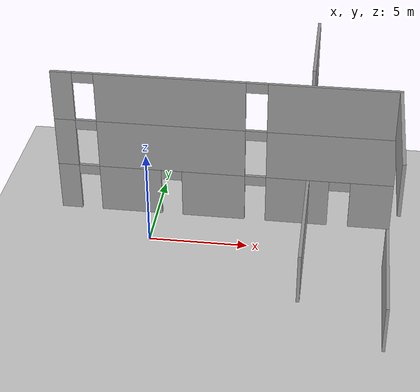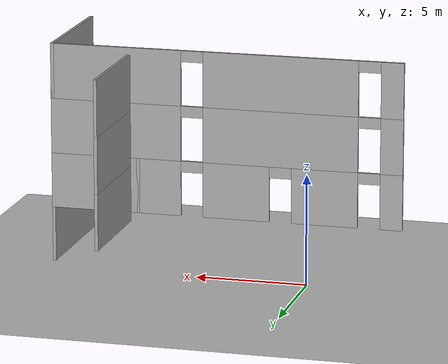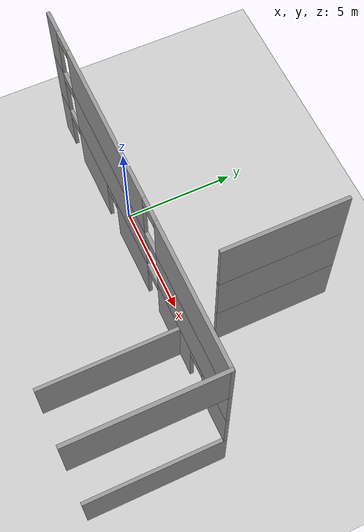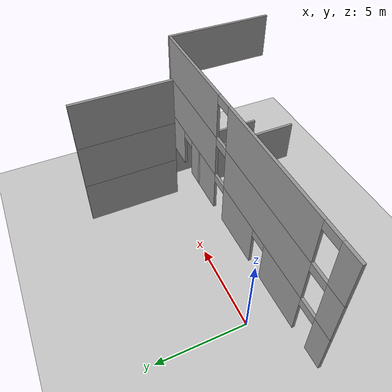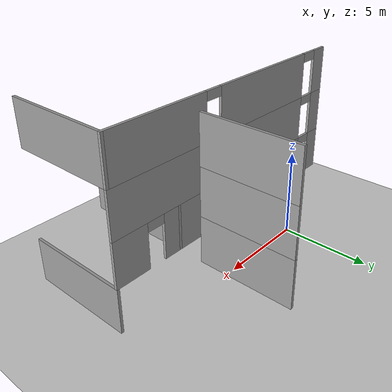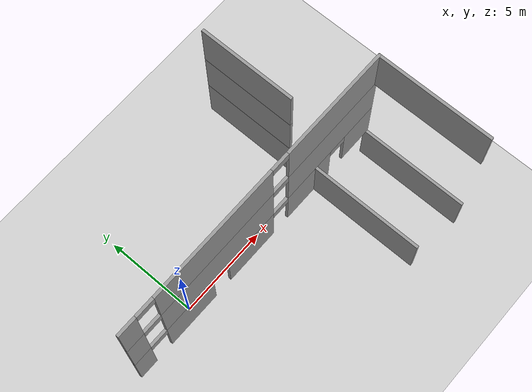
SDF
<sdf version="1.7">
 <world name="default">
  <model name="ground_plane">
   <static>1</static>
   <link name="link">
    <collision name="collision">
     <geometry><plane><normal>0 0 1</normal><size>100 100</size></plane></geometry>
     <surface>
      <contact><collide_bitmask>65535</collide_bitmask></contact>
      <friction><ode><mu>100</mu><mu2>50</mu2></ode></friction>
     </surface>
    </collision>
    <visual name="visual">
     <cast_shadows>0</cast_shadows>
     <geometry><plane><normal>0 0 1</normal><size>100 100</size></plane></geometry>
     <material>
      <script><uri>file://media/materials/scripts/gazebo.material</uri><name>Gazebo/Grey</name></script>
     </material>
    </visual>
   </link>
  </model>
  <model name="floor4plan_transp">
   <link name="Wall_112">
    <pose>7.98119 3.69551 7.5 0 0 -1.5708</pose>
    <visual name="Wall_112_Visual">
     <pose>0 0 1.25 0 -0 0</pose>
     <geometry><box><size>5 0.15 2.5</size></box></geometry>
     <material>
      <script><uri>file://media/materials/scripts/gazebo.material</uri><name>Gazebo/Grey</name></script>
      <ambient>1 1 1 1</ambient>
      <shader type="pixel"/>
     </material>
     <meta><layer>3</layer></meta>
    </visual>
    <collision name="Wall_112_Collision">
     <pose>0 0 1.25 0 -0 0</pose>
     <geometry><box><size>5 0.15 2.5</size></box></geometry>
     <surface>
      <friction>
       <ode><mu>1</mu><mu2>1</mu2><fdir1>0 0 0</fdir1><slip1>0</slip1><slip2>0</slip2></ode>
       <torsional>
        <coefficient>1</coefficient>
        <patch_radius>0</patch_radius>
        <surface_radius>0</surface_radius>
        <use_patch_radius>1</use_patch_radius>
        <ode><slip>0</slip></ode>
       </torsional>
      </friction>
      <bounce><restitution_coefficient>0</restitution_coefficient><threshold>1e+06</threshold></bounce>
      <contact>
       <collide_without_contact>0</collide_without_contact>
       <collide_without_contact_bitmask>1</collide_without_contact_bitmask>
       <collide_bitmask>1</collide_bitmask>
       <ode>
        <soft_cfm>0</soft_cfm>
        <soft_erp>0.2</soft_erp>
        <kp>1e+13</kp>
        <kd>1</kd>
        <max_vel>0.01</max_vel>
        <min_depth>0</min_depth>
       </ode>
       <bullet>
        <split_impulse>1</split_impulse>
        <split_impulse_penetration_threshold>-0.01</split_impulse_penetration_threshold>
        <soft_cfm>0</soft_cfm>
        <soft_erp>0.2</soft_erp>
        <kp>1e+13</kp>
        <kd>1</kd>
       </bullet>
      </contact>
     </surface>
    </collision>
   </link>
   <link name="Wall_116">
    <pose>3.99393 -0.263532 7.5 0 -0 0</pose>
    <visual name="Wall_116_Visual_0">
     <pose>-7.49545 0 1.25 0 -0 0</pose>
     <geometry><box><size>1.0091 0.15 2.5</size></box></geometry>
     <material>
      <script><uri>file://media/materials/scripts/gazebo.material</uri><name>Gazebo/Grey</name></script>
      <ambient>1 1 1 1</ambient>
      <shader type="pixel"/>
     </material>
     <meta><layer>3</layer></meta>
    </visual>
    <visual name="Wall_116_Visual_1">
     <pose>-2.48931 0 1.25 0 -0 0</pose>
     <geometry><box><size>7.00319 0.15 2.5</size></box></geometry>
     <material>
      <script><uri>file://media/materials/scripts/gazebo.material</uri><name>Gazebo/Grey</name></script>
      <ambient>1 1 1 1</ambient>
      <shader type="pixel"/>
     </material>
     <meta><layer>3</layer></meta>
    </visual>
    <visual name="Wall_116_Visual_2">
     <pose>5.00614 0 1.25 0 -0 0</pose>
     <geometry><box><size>5.98771 0.15 2.5</size></box></geometry>
     <material>
      <script><uri>file://media/materials/scripts/gazebo.material</uri><name>Gazebo/Grey</name></script>
      <ambient>1 1 1 1</ambient>
      <shader type="pixel"/>
     </material>
     <meta><layer>3</layer></meta>
    </visual>
    <visual name="Wall_116_Visual_3">
     <pose>-6.4909 0 2.25 0 -0 0</pose>
     <geometry><box><size>1 0.15 0.5</size></box></geometry>
     <material>
      <script><uri>file://media/materials/scripts/gazebo.material</uri><name>Gazebo/Grey</name></script>
      <ambient>1 1 1 1</ambient>
      <shader type="pixel"/>
     </material>
     <meta><layer>3</layer></meta>
    </visual>
    <visual name="Wall_116_Visual_4">
     <pose>1.51229 0 2.25 0 -0 0</pose>
     <geometry><box><size>1 0.15 0.5</size></box></geometry>
     <material>
      <script><uri>file://media/materials/scripts/gazebo.material</uri><name>Gazebo/Grey</name></script>
      <ambient>1 1 1 1</ambient>
      <shader type="pixel"/>
     </material>
     <meta><layer>3</layer></meta>
    </visual>
    <collision name="Wall_116_Collision_0">
     <pose>-7.49545 0 1.25 0 -0 0</pose>
     <geometry><box><size>1.0091 0.15 2.5</size></box></geometry>
     <surface>
      <friction>
       <ode><mu>1</mu><mu2>1</mu2><fdir1>0 0 0</fdir1><slip1>0</slip1><slip2>0</slip2></ode>
       <torsional>
        <coefficient>1</coefficient>
        <patch_radius>0</patch_radius>
        <surface_radius>0</surface_radius>
        <use_patch_radius>1</use_patch_radius>
        <ode><slip>0</slip></ode>
       </torsional>
      </friction>
      <bounce><restitution_coefficient>0</restitution_coefficient><threshold>1e+06</threshold></bounce>
      <contact>
       <collide_without_contact>0</collide_without_contact>
       <collide_without_contact_bitmask>1</collide_without_contact_bitmask>
       <collide_bitmask>1</collide_bitmask>
       <ode>
        <soft_cfm>0</soft_cfm>
        <soft_erp>0.2</soft_erp>
        <kp>1e+13</kp>
        <kd>1</kd>
        <max_vel>0.01</max_vel>
        <min_depth>0</min_depth>
       </ode>
       <bullet>
        <split_impulse>1</split_impulse>
        <split_impulse_penetration_threshold>-0.01</split_impulse_penetration_threshold>
        <soft_cfm>0</soft_cfm>
        <soft_erp>0.2</soft_erp>
        <kp>1e+13</kp>
        <kd>1</kd>
       </bullet>
      </contact>
     </surface>
    </collision>
    <collision name="Wall_116_Collision_1">
     <pose>-2.48931 0 1.25 0 -0 0</pose>
     <geometry><box><size>7.00319 0.15 2.5</size></box></geometry>
     <surface>
      <friction>
       <ode><mu>1</mu><mu2>1</mu2><fdir1>0 0 0</fdir1><slip1>0</slip1><slip2>0</slip2></ode>
       <torsional>
        <coefficient>1</coefficient>
        <patch_radius>0</patch_radius>
        <surface_radius>0</surface_radius>
        <use_patch_radius>1</use_patch_radius>
        <ode><slip>0</slip></ode>
       </torsional>
      </friction>
      <bounce><restitution_coefficient>0</restitution_coefficient><threshold>1e+06</threshold></bounce>
      <contact>
       <collide_without_contact>0</collide_without_contact>
       <collide_without_contact_bitmask>1</collide_without_contact_bitmask>
       <collide_bitmask>1</collide_bitmask>
       <ode>
        <soft_cfm>0</soft_cfm>
        <soft_erp>0.2</soft_erp>
        <kp>1e+13</kp>
        <kd>1</kd>
        <max_vel>0.01</max_vel>
        <min_depth>0</min_depth>
       </ode>
       <bullet>
        <split_impulse>1</split_impulse>
        <split_impulse_penetration_threshold>-0.01</split_impulse_penetration_threshold>
        <soft_cfm>0</soft_cfm>
        <soft_erp>0.2</soft_erp>
        <kp>1e+13</kp>
        <kd>1</kd>
       </bullet>
      </contact>
     </surface>
    </collision>
    <collision name="Wall_116_Collision_2">
     <pose>5.00614 0 1.25 0 -0 0</pose>
     <geometry><box><size>5.98771 0.15 2.5</size></box></geometry>
     <surface>
      <friction>
       <ode><mu>1</mu><mu2>1</mu2><fdir1>0 0 0</fdir1><slip1>0</slip1><slip2>0</slip2></ode>
       <torsional>
        <coefficient>1</coefficient>
        <patch_radius>0</patch_radius>
        <surface_radius>0</surface_radius>
        <use_patch_radius>1</use_patch_radius>
        <ode><slip>0</slip></ode>
       </torsional>
      </friction>
      <bounce><restitution_coefficient>0</restitution_coefficient><threshold>1e+06</threshold></bounce>
      <contact>
       <collide_without_contact>0</collide_without_contact>
       <collide_without_contact_bitmask>1</collide_without_contact_bitmask>
       <collide_bitmask>1</collide_bitmask>
       <ode>
        <soft_cfm>0</soft_cfm>
        <soft_erp>0.2</soft_erp>
        <kp>1e+13</kp>
        <kd>1</kd>
        <max_vel>0.01</max_vel>
        <min_depth>0</min_depth>
       </ode>
       <bullet>
        <split_impulse>1</split_impulse>
        <split_impulse_penetration_threshold>-0.01</split_impulse_penetration_threshold>
        <soft_cfm>0</soft_cfm>
        <soft_erp>0.2</soft_erp>
        <kp>1e+13</kp>
        <kd>1</kd>
       </bullet>
      </contact>
     </surface>
    </collision>
    <collision name="Wall_116_Collision_3">
     <pose>-6.4909 0 2.25 0 -0 0</pose>
     <geometry><box><size>1 0.15 0.5</size></box></geometry>
     <surface>
      <friction>
       <ode><mu>1</mu><mu2>1</mu2><fdir1>0 0 0</fdir1><slip1>0</slip1><slip2>0</slip2></ode>
       <torsional>
        <coefficient>1</coefficient>
        <patch_radius>0</patch_radius>
        <surface_radius>0</surface_radius>
        <use_patch_radius>1</use_patch_radius>
        <ode><slip>0</slip></ode>
       </torsional>
      </friction>
      <bounce><restitution_coefficient>0</restitution_coefficient><threshold>1e+06</threshold></bounce>
      <contact>
       <collide_without_contact>0</collide_without_contact>
       <collide_without_contact_bitmask>1</collide_without_contact_bitmask>
       <collide_bitmask>1</collide_bitmask>
       <ode>
        <soft_cfm>0</soft_cfm>
        <soft_erp>0.2</soft_erp>
        <kp>1e+13</kp>
        <kd>1</kd>
        <max_vel>0.01</max_vel>
        <min_depth>0</min_depth>
       </ode>
       <bullet>
        <split_impulse>1</split_impulse>
        <split_impulse_penetration_threshold>-0.01</split_impulse_penetration_threshold>
        <soft_cfm>0</soft_cfm>
        <soft_erp>0.2</soft_erp>
        <kp>1e+13</kp>
        <kd>1</kd>
       </bullet>
      </contact>
     </surface>
    </collision>
    <collision name="Wall_116_Collision_4">
     <pose>1.51229 0 2.25 0 -0 0</pose>
     <geometry><box><size>1 0.15 0.5</size></box></geometry>
     <surface>
      <friction>
       <ode><mu>1</mu><mu2>1</mu2><fdir1>0 0 0</fdir1><slip1>0</slip1><slip2>0</slip2></ode>
       <torsional>
        <coefficient>1</coefficient>
        <patch_radius>0</patch_radius>
        <surface_radius>0</surface_radius>
        <use_patch_radius>1</use_patch_radius>
        <ode><slip>0</slip></ode>
       </torsional>
      </friction>
      <bounce><restitution_coefficient>0</restitution_coefficient><threshold>1e+06</threshold></bounce>
      <contact>
       <collide_without_contact>0</collide_without_contact>
       <collide_without_contact_bitmask>1</collide_without_contact_bitmask>
       <collide_bitmask>1</collide_bitmask>
       <ode>
        <soft_cfm>0</soft_cfm>
        <soft_erp>0.2</soft_erp>
        <kp>1e+13</kp>
        <kd>1</kd>
        <max_vel>0.01</max_vel>
        <min_depth>0</min_depth>
       </ode>
       <bullet>
        <split_impulse>1</split_impulse>
        <split_impulse_penetration_threshold>-0.01</split_impulse_penetration_threshold>
        <soft_cfm>0</soft_cfm>
        <soft_erp>0.2</soft_erp>
        <kp>1e+13</kp>
        <kd>1</kd>
       </bullet>
      </contact>
     </surface>
    </collision>
   </link>
   <link name="Wall_117">
    <pose>11.9189 -3.18853 7.5 0 0 -1.5708</pose>
    <visual name="Wall_117_Visual">
     <pose>0 0 1.25 0 -0 0</pose>
     <geometry><box><size>6 0.15 2.5</size></box></geometry>
     <material>
      <script><uri>file://media/materials/scripts/gazebo.material</uri><name>Gazebo/Grey</name></script>
      <ambient>1 1 1 1</ambient>
      <shader type="pixel"/>
     </material>
     <meta><layer>3</layer></meta>
    </visual>
    <collision name="Wall_117_Collision">
     <pose>0 0 1.25 0 -0 0</pose>
     <geometry><box><size>6 0.15 2.5</size></box></geometry>
     <surface>
      <friction>
       <ode><mu>1</mu><mu2>1</mu2><fdir1>0 0 0</fdir1><slip1>0</slip1><slip2>0</slip2></ode>
       <torsional>
        <coefficient>1</coefficient>
        <patch_radius>0</patch_radius>
        <surface_radius>0</surface_radius>
        <use_patch_radius>1</use_patch_radius>
        <ode><slip>0</slip></ode>
       </torsional>
      </friction>
      <bounce><restitution_coefficient>0</restitution_coefficient><threshold>1e+06</threshold></bounce>
      <contact>
       <collide_without_contact>0</collide_without_contact>
       <collide_without_contact_bitmask>1</collide_without_contact_bitmask>
       <collide_bitmask>1</collide_bitmask>
       <ode>
        <soft_cfm>0</soft_cfm>
        <soft_erp>0.2</soft_erp>
        <kp>1e+13</kp>
        <kd>1</kd>
        <max_vel>0.01</max_vel>
        <min_depth>0</min_depth>
       </ode>
       <bullet>
        <split_impulse>1</split_impulse>
        <split_impulse_penetration_threshold>-0.01</split_impulse_penetration_threshold>
        <soft_cfm>0</soft_cfm>
        <soft_erp>0.2</soft_erp>
        <kp>1e+13</kp>
        <kd>1</kd>
       </bullet>
      </contact>
     </surface>
    </collision>
   </link>
   <link name="Wall_34">
    <pose>11.9189 -3.18853 0 0 0 -1.5708</pose>
    <visual name="Wall_34_Visual">
     <pose>0 0 1.25 0 -0 0</pose>
     <geometry><box><size>6 0.15 2.5</size></box></geometry>
     <material>
      <script><uri>file://media/materials/scripts/gazebo.material</uri><name>Gazebo/Grey</name></script>
      <ambient>1 1 1 1</ambient>
      <shader type="pixel"/>
     </material>
     <meta><layer>0</layer></meta>
    </visual>
    <collision name="Wall_34_Collision">
     <pose>0 0 1.25 0 -0 0</pose>
     <geometry><box><size>6 0.15 2.5</size></box></geometry>
     <surface>
      <friction>
       <ode><mu>1</mu><mu2>1</mu2><fdir1>0 0 0</fdir1><slip1>0</slip1><slip2>0</slip2></ode>
       <torsional>
        <coefficient>1</coefficient>
        <patch_radius>0</patch_radius>
        <surface_radius>0</surface_radius>
        <use_patch_radius>1</use_patch_radius>
        <ode><slip>0</slip></ode>
       </torsional>
      </friction>
      <bounce><restitution_coefficient>0</restitution_coefficient><threshold>1e+06</threshold></bounce>
      <contact>
       <collide_without_contact>0</collide_without_contact>
       <collide_without_contact_bitmask>1</collide_without_contact_bitmask>
       <collide_bitmask>1</collide_bitmask>
       <ode>
        <soft_cfm>0</soft_cfm>
        <soft_erp>0.2</soft_erp>
        <kp>1e+13</kp>
        <kd>1</kd>
        <max_vel>0.01</max_vel>
        <min_depth>0</min_depth>
       </ode>
       <bullet>
        <split_impulse>1</split_impulse>
        <split_impulse_penetration_threshold>-0.01</split_impulse_penetration_threshold>
        <soft_cfm>0</soft_cfm>
        <soft_erp>0.2</soft_erp>
        <kp>1e+13</kp>
        <kd>1</kd>
       </bullet>
      </contact>
     </surface>
    </collision>
   </link>
   <link name="Wall_62">
    <pose>7.98119 3.69551 2.5 0 0 -1.5708</pose>
    <visual name="Wall_62_Visual">
     <pose>0 0 1.25 0 -0 0</pose>
     <geometry><box><size>5 0.15 2.5</size></box></geometry>
     <material>
      <script><uri>file://media/materials/scripts/gazebo.material</uri><name>Gazebo/Grey</name></script>
      <ambient>1 1 1 1</ambient>
      <shader type="pixel"/>
     </material>
     <meta><layer>1</layer></meta>
    </visual>
    <collision name="Wall_62_Collision">
     <pose>0 0 1.25 0 -0 0</pose>
     <geometry><box><size>5 0.15 2.5</size></box></geometry>
     <surface>
      <friction>
       <ode><mu>1</mu><mu2>1</mu2><fdir1>0 0 0</fdir1><slip1>0</slip1><slip2>0</slip2></ode>
       <torsional>
        <coefficient>1</coefficient>
        <patch_radius>0</patch_radius>
        <surface_radius>0</surface_radius>
        <use_patch_radius>1</use_patch_radius>
        <ode><slip>0</slip></ode>
       </torsional>
      </friction>
      <bounce><restitution_coefficient>0</restitution_coefficient><threshold>1e+06</threshold></bounce>
      <contact>
       <collide_without_contact>0</collide_without_contact>
       <collide_without_contact_bitmask>1</collide_without_contact_bitmask>
       <collide_bitmask>1</collide_bitmask>
       <ode>
        <soft_cfm>0</soft_cfm>
        <soft_erp>0.2</soft_erp>
        <kp>1e+13</kp>
        <kd>1</kd>
        <max_vel>0.01</max_vel>
        <min_depth>0</min_depth>
       </ode>
       <bullet>
        <split_impulse>1</split_impulse>
        <split_impulse_penetration_threshold>-0.01</split_impulse_penetration_threshold>
        <soft_cfm>0</soft_cfm>
        <soft_erp>0.2</soft_erp>
        <kp>1e+13</kp>
        <kd>1</kd>
       </bullet>
      </contact>
     </surface>
    </collision>
   </link>
   <link name="Wall_66">
    <pose>3.99393 -0.263532 2.5 0 -0 0</pose>
    <visual name="Wall_66_Visual_0">
     <pose>-7.49545 0 1.25 0 -0 0</pose>
     <geometry><box><size>1.0091 0.15 2.5</size></box></geometry>
     <material>
      <script><uri>file://media/materials/scripts/gazebo.material</uri><name>Gazebo/Grey</name></script>
      <ambient>1 1 1 1</ambient>
      <shader type="pixel"/>
     </material>
     <meta><layer>1</layer></meta>
    </visual>
    <visual name="Wall_66_Visual_1">
     <pose>-4.50167 0 1.25 0 -0 0</pose>
     <geometry><box><size>2.97846 0.15 2.5</size></box></geometry>
     <material>
      <script><uri>file://media/materials/scripts/gazebo.material</uri><name>Gazebo/Grey</name></script>
      <ambient>1 1 1 1</ambient>
      <shader type="pixel"/>
     </material>
     <meta><layer>1</layer></meta>
    </visual>
    <visual name="Wall_66_Visual_2">
     <pose>-0.500075 0 1.25 0 -0 0</pose>
     <geometry><box><size>3.02473 0.15 2.5</size></box></geometry>
     <material>
      <script><uri>file://media/materials/scripts/gazebo.material</uri><name>Gazebo/Grey</name></script>
      <ambient>1 1 1 1</ambient>
      <shader type="pixel"/>
     </material>
     <meta><layer>1</layer></meta>
    </visual>
    <visual name="Wall_66_Visual_3">
     <pose>3.50152 0 1.25 0 -0 0</pose>
     <geometry><box><size>2.97846 0.15 2.5</size></box></geometry>
     <material>
      <script><uri>file://media/materials/scripts/gazebo.material</uri><name>Gazebo/Grey</name></script>
      <ambient>1 1 1 1</ambient>
      <shader type="pixel"/>
     </material>
     <meta><layer>1</layer></meta>
    </visual>
    <visual name="Wall_66_Visual_4">
     <pose>6.99538 0 1.25 0 -0 0</pose>
     <geometry><box><size>2.00925 0.15 2.5</size></box></geometry>
     <material>
      <script><uri>file://media/materials/scripts/gazebo.material</uri><name>Gazebo/Grey</name></script>
      <ambient>1 1 1 1</ambient>
      <shader type="pixel"/>
     </material>
     <meta><layer>1</layer></meta>
    </visual>
    <visual name="Wall_66_Visual_5">
     <pose>-6.4909 0 2.25 0 -0 0</pose>
     <geometry><box><size>1 0.15 0.5</size></box></geometry>
     <material>
      <script><uri>file://media/materials/scripts/gazebo.material</uri><name>Gazebo/Grey</name></script>
      <ambient>1 1 1 1</ambient>
      <shader type="pixel"/>
     </material>
     <meta><layer>1</layer></meta>
    </visual>
    <visual name="Wall_66_Visual_6">
     <pose>-2.51244 0 2.25 0 -0 0</pose>
     <geometry><box><size>1 0.15 0.5</size></box></geometry>
     <material>
      <script><uri>file://media/materials/scripts/gazebo.material</uri><name>Gazebo/Grey</name></script>
      <ambient>1 1 1 1</ambient>
      <shader type="pixel"/>
     </material>
     <meta><layer>1</layer></meta>
    </visual>
    <visual name="Wall_66_Visual_7">
     <pose>1.51229 0 2.25 0 -0 0</pose>
     <geometry><box><size>1 0.15 0.5</size></box></geometry>
     <material>
      <script><uri>file://media/materials/scripts/gazebo.material</uri><name>Gazebo/Grey</name></script>
      <ambient>1 1 1 1</ambient>
      <shader type="pixel"/>
     </material>
     <meta><layer>1</layer></meta>
    </visual>
    <visual name="Wall_66_Visual_8">
     <pose>5.49075 0 2.25 0 -0 0</pose>
     <geometry><box><size>1 0.15 0.5</size></box></geometry>
     <material>
      <script><uri>file://media/materials/scripts/gazebo.material</uri><name>Gazebo/Grey</name></script>
      <ambient>1 1 1 1</ambient>
      <shader type="pixel"/>
     </material>
     <meta><layer>1</layer></meta>
    </visual>
    <collision name="Wall_66_Collision_0">
     <pose>-7.49545 0 1.25 0 -0 0</pose>
     <geometry><box><size>1.0091 0.15 2.5</size></box></geometry>
     <surface>
      <friction>
       <ode><mu>1</mu><mu2>1</mu2><fdir1>0 0 0</fdir1><slip1>0</slip1><slip2>0</slip2></ode>
       <torsional>
        <coefficient>1</coefficient>
        <patch_radius>0</patch_radius>
        <surface_radius>0</surface_radius>
        <use_patch_radius>1</use_patch_radius>
        <ode><slip>0</slip></ode>
       </torsional>
      </friction>
      <bounce><restitution_coefficient>0</restitution_coefficient><threshold>1e+06</threshold></bounce>
      <contact>
       <collide_without_contact>0</collide_without_contact>
       <collide_without_contact_bitmask>1</collide_without_contact_bitmask>
       <collide_bitmask>1</collide_bitmask>
       <ode>
        <soft_cfm>0</soft_cfm>
        <soft_erp>0.2</soft_erp>
        <kp>1e+13</kp>
        <kd>1</kd>
        <max_vel>0.01</max_vel>
        <min_depth>0</min_depth>
       </ode>
       <bullet>
        <split_impulse>1</split_impulse>
        <split_impulse_penetration_threshold>-0.01</split_impulse_penetration_threshold>
        <soft_cfm>0</soft_cfm>
        <soft_erp>0.2</soft_erp>
        <kp>1e+13</kp>
        <kd>1</kd>
       </bullet>
      </contact>
     </surface>
    </collision>
    <collision name="Wall_66_Collision_1">
     <pose>-4.50167 0 1.25 0 -0 0</pose>
     <geometry><box><size>2.97846 0.15 2.5</size></box></geometry>
     <surface>
      <friction>
       <ode><mu>1</mu><mu2>1</mu2><fdir1>0 0 0</fdir1><slip1>0</slip1><slip2>0</slip2></ode>
       <torsional>
        <coefficient>1</coefficient>
        <patch_radius>0</patch_radius>
        <surface_radius>0</surface_radius>
        <use_patch_radius>1</use_patch_radius>
        <ode><slip>0</slip></ode>
       </torsional>
      </friction>
      <bounce><restitution_coefficient>0</restitution_coefficient><threshold>1e+06</threshold></bounce>
      <contact>
       <collide_without_contact>0</collide_without_contact>
       <collide_without_contact_bitmask>1</collide_without_contact_bitmask>
       <collide_bitmask>1</collide_bitmask>
       <ode>
        <soft_cfm>0</soft_cfm>
        <soft_erp>0.2</soft_erp>
        <kp>1e+13</kp>
        <kd>1</kd>
        <max_vel>0.01</max_vel>
        <min_depth>0</min_depth>
       </ode>
       <bullet>
        <split_impulse>1</split_impulse>
        <split_impulse_penetration_threshold>-0.01</split_impulse_penetration_threshold>
        <soft_cfm>0</soft_cfm>
        <soft_erp>0.2</soft_erp>
        <kp>1e+13</kp>
        <kd>1</kd>
       </bullet>
      </contact>
     </surface>
    </collision>
    <collision name="Wall_66_Collision_2">
     <pose>-0.500075 0 1.25 0 -0 0</pose>
     <geometry><box><size>3.02473 0.15 2.5</size></box></geometry>
     <surface>
      <friction>
       <ode><mu>1</mu><mu2>1</mu2><fdir1>0 0 0</fdir1><slip1>0</slip1><slip2>0</slip2></ode>
       <torsional>
        <coefficient>1</coefficient>
        <patch_radius>0</patch_radius>
        <surface_radius>0</surface_radius>
        <use_patch_radius>1</use_patch_radius>
        <ode><slip>0</slip></ode>
       </torsional>
      </friction>
      <bounce><restitution_coefficient>0</restitution_coefficient><threshold>1e+06</threshold></bounce>
      <contact>
       <collide_without_contact>0</collide_without_contact>
       <collide_without_contact_bitmask>1</collide_without_contact_bitmask>
       <collide_bitmask>1</collide_bitmask>
       <ode>
        <soft_cfm>0</soft_cfm>
        <soft_erp>0.2</soft_erp>
        <kp>1e+13</kp>
        <kd>1</kd>
        <max_vel>0.01</max_vel>
        <min_depth>0</min_depth>
       </ode>
       <bullet>
        <split_impulse>1</split_impulse>
        <split_impulse_penetration_threshold>-0.01</split_impulse_penetration_threshold>
        <soft_cfm>0</soft_cfm>
        <soft_erp>0.2</soft_erp>
        <kp>1e+13</kp>
        <kd>1</kd>
       </bullet>
      </contact>
     </surface>
    </collision>
    <collision name="Wall_66_Collision_3">
     <pose>3.50152 0 1.25 0 -0 0</pose>
     <geometry><box><size>2.97846 0.15 2.5</size></box></geometry>
     <surface>
      <friction>
       <ode><mu>1</mu><mu2>1</mu2><fdir1>0 0 0</fdir1><slip1>0</slip1><slip2>0</slip2></ode>
       <torsional>
        <coefficient>1</coefficient>
        <patch_radius>0</patch_radius>
        <surface_radius>0</surface_radius>
        <use_patch_radius>1</use_patch_radius>
        <ode><slip>0</slip></ode>
       </torsional>
      </friction>
      <bounce><restitution_coefficient>0</restitution_coefficient><threshold>1e+06</threshold></bounce>
      <contact>
       <collide_without_contact>0</collide_without_contact>
       <collide_without_contact_bitmask>1</collide_without_contact_bitmask>
       <collide_bitmask>1</collide_bitmask>
       <ode>
        <soft_cfm>0</soft_cfm>
        <soft_erp>0.2</soft_erp>
        <kp>1e+13</kp>
        <kd>1</kd>
        <max_vel>0.01</max_vel>
        <min_depth>0</min_depth>
       </ode>
       <bullet>
        <split_impulse>1</split_impulse>
        <split_impulse_penetration_threshold>-0.01</split_impulse_penetration_threshold>
        <soft_cfm>0</soft_cfm>
        <soft_erp>0.2</soft_erp>
        <kp>1e+13</kp>
        <kd>1</kd>
       </bullet>
      </contact>
     </surface>
    </collision>
    <collision name="Wall_66_Collision_4">
     <pose>6.99538 0 1.25 0 -0 0</pose>
     <geometry><box><size>2.00925 0.15 2.5</size></box></geometry>
     <surface>
      <friction>
       <ode><mu>1</mu><mu2>1</mu2><fdir1>0 0 0</fdir1><slip1>0</slip1><slip2>0</slip2></ode>
       <torsional>
        <coefficient>1</coefficient>
        <patch_radius>0</patch_radius>
        <surface_radius>0</surface_radius>
        <use_patch_radius>1</use_patch_radius>
        <ode><slip>0</slip></ode>
       </torsional>
      </friction>
      <bounce><restitution_coefficient>0</restitution_coefficient><threshold>1e+06</threshold></bounce>
      <contact>
       <collide_without_contact>0</collide_without_contact>
       <collide_without_contact_bitmask>1</collide_without_contact_bitmask>
       <collide_bitmask>1</collide_bitmask>
       <ode>
        <soft_cfm>0</soft_cfm>
        <soft_erp>0.2</soft_erp>
        <kp>1e+13</kp>
        <kd>1</kd>
        <max_vel>0.01</max_vel>
        <min_depth>0</min_depth>
       </ode>
       <bullet>
        <split_impulse>1</split_impulse>
        <split_impulse_penetration_threshold>-0.01</split_impulse_penetration_threshold>
        <soft_cfm>0</soft_cfm>
        <soft_erp>0.2</soft_erp>
        <kp>1e+13</kp>
        <kd>1</kd>
       </bullet>
      </contact>
     </surface>
    </collision>
    <collision name="Wall_66_Collision_5">
     <pose>-6.4909 0 2.25 0 -0 0</pose>
     <geometry><box><size>1 0.15 0.5</size></box></geometry>
     <surface>
      <friction>
       <ode><mu>1</mu><mu2>1</mu2><fdir1>0 0 0</fdir1><slip1>0</slip1><slip2>0</slip2></ode>
       <torsional>
        <coefficient>1</coefficient>
        <patch_radius>0</patch_radius>
        <surface_radius>0</surface_radius>
        <use_patch_radius>1</use_patch_radius>
        <ode><slip>0</slip></ode>
       </torsional>
      </friction>
      <bounce><restitution_coefficient>0</restitution_coefficient><threshold>1e+06</threshold></bounce>
      <contact>
       <collide_without_contact>0</collide_without_contact>
       <collide_without_contact_bitmask>1</collide_without_contact_bitmask>
       <collide_bitmask>1</collide_bitmask>
       <ode>
        <soft_cfm>0</soft_cfm>
        <soft_erp>0.2</soft_erp>
        <kp>1e+13</kp>
        <kd>1</kd>
        <max_vel>0.01</max_vel>
        <min_depth>0</min_depth>
       </ode>
       <bullet>
        <split_impulse>1</split_impulse>
        <split_impulse_penetration_threshold>-0.01</split_impulse_penetration_threshold>
        <soft_cfm>0</soft_cfm>
        <soft_erp>0.2</soft_erp>
        <kp>1e+13</kp>
        <kd>1</kd>
       </bullet>
      </contact>
     </surface>
    </collision>
    <collision name="Wall_66_Collision_6">
     <pose>-2.51244 0 2.25 0 -0 0</pose>
     <geometry><box><size>1 0.15 0.5</size></box></geometry>
     <surface>
      <friction>
       <ode><mu>1</mu><mu2>1</mu2><fdir1>0 0 0</fdir1><slip1>0</slip1><slip2>0</slip2></ode>
       <torsional>
        <coefficient>1</coefficient>
        <patch_radius>0</patch_radius>
        <surface_radius>0</surface_radius>
        <use_patch_radius>1</use_patch_radius>
        <ode><slip>0</slip></ode>
       </torsional>
      </friction>
      <bounce><restitution_coefficient>0</restitution_coefficient><threshold>1e+06</threshold></bounce>
      <contact>
       <collide_without_contact>0</collide_without_contact>
       <collide_without_contact_bitmask>1</collide_without_contact_bitmask>
       <collide_bitmask>1</collide_bitmask>
       <ode>
        <soft_cfm>0</soft_cfm>
        <soft_erp>0.2</soft_erp>
        <kp>1e+13</kp>
        <kd>1</kd>
        <max_vel>0.01</max_vel>
        <min_depth>0</min_depth>
       </ode>
       <bullet>
        <split_impulse>1</split_impulse>
        <split_impulse_penetration_threshold>-0.01</split_impulse_penetration_threshold>
        <soft_cfm>0</soft_cfm>
        <soft_erp>0.2</soft_erp>
        <kp>1e+13</kp>
        <kd>1</kd>
       </bullet>
      </contact>
     </surface>
    </collision>
    <collision name="Wall_66_Collision_7">
     <pose>1.51229 0 2.25 0 -0 0</pose>
     <geometry><box><size>1 0.15 0.5</size></box></geometry>
     <surface>
      <friction>
       <ode><mu>1</mu><mu2>1</mu2><fdir1>0 0 0</fdir1><slip1>0</slip1><slip2>0</slip2></ode>
       <torsional>
        <coefficient>1</coefficient>
        <patch_radius>0</patch_radius>
        <surface_radius>0</surface_radius>
        <use_patch_radius>1</use_patch_radius>
        <ode><slip>0</slip></ode>
       </torsional>
      </friction>
      <bounce><restitution_coefficient>0</restitution_coefficient><threshold>1e+06</threshold></bounce>
      <contact>
       <collide_without_contact>0</collide_without_contact>
       <collide_without_contact_bitmask>1</collide_without_contact_bitmask>
       <collide_bitmask>1</collide_bitmask>
       <ode>
        <soft_cfm>0</soft_cfm>
        <soft_erp>0.2</soft_erp>
        <kp>1e+13</kp>
        <kd>1</kd>
        <max_vel>0.01</max_vel>
        <min_depth>0</min_depth>
       </ode>
       <bullet>
        <split_impulse>1</split_impulse>
        <split_impulse_penetration_threshold>-0.01</split_impulse_penetration_threshold>
        <soft_cfm>0</soft_cfm>
        <soft_erp>0.2</soft_erp>
        <kp>1e+13</kp>
        <kd>1</kd>
       </bullet>
      </contact>
     </surface>
    </collision>
    <collision name="Wall_66_Collision_8">
     <pose>5.49075 0 2.25 0 -0 0</pose>
     <geometry><box><size>1 0.15 0.5</size></box></geometry>
     <surface>
      <friction>
       <ode><mu>1</mu><mu2>1</mu2><fdir1>0 0 0</fdir1><slip1>0</slip1><slip2>0</slip2></ode>
       <torsional>
        <coefficient>1</coefficient>
        <patch_radius>0</patch_radius>
        <surface_radius>0</surface_radius>
        <use_patch_radius>1</use_patch_radius>
        <ode><slip>0</slip></ode>
       </torsional>
      </friction>
      <bounce><restitution_coefficient>0</restitution_coefficient><threshold>1e+06</threshold></bounce>
      <contact>
       <collide_without_contact>0</collide_without_contact>
       <collide_without_contact_bitmask>1</collide_without_contact_bitmask>
       <collide_bitmask>1</collide_bitmask>
       <ode>
        <soft_cfm>0</soft_cfm>
        <soft_erp>0.2</soft_erp>
        <kp>1e+13</kp>
        <kd>1</kd>
        <max_vel>0.01</max_vel>
        <min_depth>0</min_depth>
       </ode>
       <bullet>
        <split_impulse>1</split_impulse>
        <split_impulse_penetration_threshold>-0.01</split_impulse_penetration_threshold>
        <soft_cfm>0</soft_cfm>
        <soft_erp>0.2</soft_erp>
        <kp>1e+13</kp>
        <kd>1</kd>
       </bullet>
      </contact>
     </surface>
    </collision>
   </link>
   <link name="Wall_71">
    <pose>7.98119 -3.18853 2.5 0 0 -1.5708</pose>
    <visual name="Wall_71_Visual">
     <pose>0 0 1.25 0 -0 0</pose>
     <geometry><box><size>6 0.15 2.5</size></box></geometry>
     <material>
      <script><uri>file://media/materials/scripts/gazebo.material</uri><name>Gazebo/Grey</name></script>
      <ambient>1 1 1 1</ambient>
      <shader type="pixel"/>
     </material>
     <meta><layer>1</layer></meta>
    </visual>
    <collision name="Wall_71_Collision">
     <pose>0 0 1.25 0 -0 0</pose>
     <geometry><box><size>6 0.15 2.5</size></box></geometry>
     <surface>
      <friction>
       <ode><mu>1</mu><mu2>1</mu2><fdir1>0 0 0</fdir1><slip1>0</slip1><slip2>0</slip2></ode>
       <torsional>
        <coefficient>1</coefficient>
        <patch_radius>0</patch_radius>
        <surface_radius>0</surface_radius>
        <use_patch_radius>1</use_patch_radius>
        <ode><slip>0</slip></ode>
       </torsional>
      </friction>
      <bounce><restitution_coefficient>0</restitution_coefficient><threshold>1e+06</threshold></bounce>
      <contact>
       <collide_without_contact>0</collide_without_contact>
       <collide_without_contact_bitmask>1</collide_without_contact_bitmask>
       <collide_bitmask>1</collide_bitmask>
       <ode>
        <soft_cfm>0</soft_cfm>
        <soft_erp>0.2</soft_erp>
        <kp>1e+13</kp>
        <kd>1</kd>
        <max_vel>0.01</max_vel>
        <min_depth>0</min_depth>
       </ode>
       <bullet>
        <split_impulse>1</split_impulse>
        <split_impulse_penetration_threshold>-0.01</split_impulse_penetration_threshold>
        <soft_cfm>0</soft_cfm>
        <soft_erp>0.2</soft_erp>
        <kp>1e+13</kp>
        <kd>1</kd>
       </bullet>
      </contact>
     </surface>
    </collision>
   </link>
   <link name="Wall_87">
    <pose>7.98119 3.69551 5 0 0 -1.5708</pose>
    <visual name="Wall_87_Visual">
     <pose>0 0 1.25 0 -0 0</pose>
     <geometry><box><size>5 0.15 2.5</size></box></geometry>
     <material>
      <script><uri>file://media/materials/scripts/gazebo.material</uri><name>Gazebo/Grey</name></script>
      <ambient>1 1 1 1</ambient>
      <shader type="pixel"/>
     </material>
     <meta><layer>2</layer></meta>
    </visual>
    <collision name="Wall_87_Collision">
     <pose>0 0 1.25 0 -0 0</pose>
     <geometry><box><size>5 0.15 2.5</size></box></geometry>
     <surface>
      <friction>
       <ode><mu>1</mu><mu2>1</mu2><fdir1>0 0 0</fdir1><slip1>0</slip1><slip2>0</slip2></ode>
       <torsional>
        <coefficient>1</coefficient>
        <patch_radius>0</patch_radius>
        <surface_radius>0</surface_radius>
        <use_patch_radius>1</use_patch_radius>
        <ode><slip>0</slip></ode>
       </torsional>
      </friction>
      <bounce><restitution_coefficient>0</restitution_coefficient><threshold>1e+06</threshold></bounce>
      <contact>
       <collide_without_contact>0</collide_without_contact>
       <collide_without_contact_bitmask>1</collide_without_contact_bitmask>
       <collide_bitmask>1</collide_bitmask>
       <ode>
        <soft_cfm>0</soft_cfm>
        <soft_erp>0.2</soft_erp>
        <kp>1e+13</kp>
        <kd>1</kd>
        <max_vel>0.01</max_vel>
        <min_depth>0</min_depth>
       </ode>
       <bullet>
        <split_impulse>1</split_impulse>
        <split_impulse_penetration_threshold>-0.01</split_impulse_penetration_threshold>
        <soft_cfm>0</soft_cfm>
        <soft_erp>0.2</soft_erp>
        <kp>1e+13</kp>
        <kd>1</kd>
       </bullet>
      </contact>
     </surface>
    </collision>
   </link>
   <link name="Wall_91">
    <pose>3.99393 -0.263532 5 0 -0 0</pose>
    <visual name="Wall_91_Visual_0">
     <pose>-7.49545 0 1.25 0 -0 0</pose>
     <geometry><box><size>1.0091 0.15 2.5</size></box></geometry>
     <material>
      <script><uri>file://media/materials/scripts/gazebo.material</uri><name>Gazebo/Grey</name></script>
      <ambient>1 1 1 1</ambient>
      <shader type="pixel"/>
     </material>
     <meta><layer>2</layer></meta>
    </visual>
    <visual name="Wall_91_Visual_1">
     <pose>-2.48931 0 1.25 0 -0 0</pose>
     <geometry><box><size>7.00319 0.15 2.5</size></box></geometry>
     <material>
      <script><uri>file://media/materials/scripts/gazebo.material</uri><name>Gazebo/Grey</name></script>
      <ambient>1 1 1 1</ambient>
      <shader type="pixel"/>
     </material>
     <meta><layer>2</layer></meta>
    </visual>
    <visual name="Wall_91_Visual_2">
     <pose>5.00614 0 1.25 0 -0 0</pose>
     <geometry><box><size>5.98771 0.15 2.5</size></box></geometry>
     <material>
      <script><uri>file://media/materials/scripts/gazebo.material</uri><name>Gazebo/Grey</name></script>
      <ambient>1 1 1 1</ambient>
      <shader type="pixel"/>
     </material>
     <meta><layer>2</layer></meta>
    </visual>
    <visual name="Wall_91_Visual_3">
     <pose>-6.4909 0 2.25 0 -0 0</pose>
     <geometry><box><size>1 0.15 0.5</size></box></geometry>
     <material>
      <script><uri>file://media/materials/scripts/gazebo.material</uri><name>Gazebo/Grey</name></script>
      <ambient>1 1 1 1</ambient>
      <shader type="pixel"/>
     </material>
     <meta><layer>2</layer></meta>
    </visual>
    <visual name="Wall_91_Visual_4">
     <pose>1.51229 0 2.25 0 -0 0</pose>
     <geometry><box><size>1 0.15 0.5</size></box></geometry>
     <material>
      <script><uri>file://media/materials/scripts/gazebo.material</uri><name>Gazebo/Grey</name></script>
      <ambient>1 1 1 1</ambient>
      <shader type="pixel"/>
     </material>
     <meta><layer>2</layer></meta>
    </visual>
    <collision name="Wall_91_Collision_0">
     <pose>-7.49545 0 1.25 0 -0 0</pose>
     <geometry><box><size>1.0091 0.15 2.5</size></box></geometry>
     <surface>
      <friction>
       <ode><mu>1</mu><mu2>1</mu2><fdir1>0 0 0</fdir1><slip1>0</slip1><slip2>0</slip2></ode>
       <torsional>
        <coefficient>1</coefficient>
        <patch_radius>0</patch_radius>
        <surface_radius>0</surface_radius>
        <use_patch_radius>1</use_patch_radius>
        <ode><slip>0</slip></ode>
       </torsional>
      </friction>
      <bounce><restitution_coefficient>0</restitution_coefficient><threshold>1e+06</threshold></bounce>
      <contact>
       <collide_without_contact>0</collide_without_contact>
       <collide_without_contact_bitmask>1</collide_without_contact_bitmask>
       <collide_bitmask>1</collide_bitmask>
       <ode>
        <soft_cfm>0</soft_cfm>
        <soft_erp>0.2</soft_erp>
        <kp>1e+13</kp>
        <kd>1</kd>
        <max_vel>0.01</max_vel>
        <min_depth>0</min_depth>
       </ode>
       <bullet>
        <split_impulse>1</split_impulse>
        <split_impulse_penetration_threshold>-0.01</split_impulse_penetration_threshold>
        <soft_cfm>0</soft_cfm>
        <soft_erp>0.2</soft_erp>
        <kp>1e+13</kp>
        <kd>1</kd>
       </bullet>
      </contact>
     </surface>
    </collision>
    <collision name="Wall_91_Collision_1">
     <pose>-2.48931 0 1.25 0 -0 0</pose>
     <geometry><box><size>7.00319 0.15 2.5</size></box></geometry>
     <surface>
      <friction>
       <ode><mu>1</mu><mu2>1</mu2><fdir1>0 0 0</fdir1><slip1>0</slip1><slip2>0</slip2></ode>
       <torsional>
        <coefficient>1</coefficient>
        <patch_radius>0</patch_radius>
        <surface_radius>0</surface_radius>
        <use_patch_radius>1</use_patch_radius>
        <ode><slip>0</slip></ode>
       </torsional>
      </friction>
      <bounce><restitution_coefficient>0</restitution_coefficient><threshold>1e+06</threshold></bounce>
      <contact>
       <collide_without_contact>0</collide_without_contact>
       <collide_without_contact_bitmask>1</collide_without_contact_bitmask>
       <collide_bitmask>1</collide_bitmask>
       <ode>
        <soft_cfm>0</soft_cfm>
        <soft_erp>0.2</soft_erp>
        <kp>1e+13</kp>
        <kd>1</kd>
        <max_vel>0.01</max_vel>
        <min_depth>0</min_depth>
       </ode>
       <bullet>
        <split_impulse>1</split_impulse>
        <split_impulse_penetration_threshold>-0.01</split_impulse_penetration_threshold>
        <soft_cfm>0</soft_cfm>
        <soft_erp>0.2</soft_erp>
        <kp>1e+13</kp>
        <kd>1</kd>
       </bullet>
      </contact>
     </surface>
    </collision>
    <collision name="Wall_91_Collision_2">
     <pose>5.00614 0 1.25 0 -0 0</pose>
     <geometry><box><size>5.98771 0.15 2.5</size></box></geometry>
     <surface>
      <friction>
       <ode><mu>1</mu><mu2>1</mu2><fdir1>0 0 0</fdir1><slip1>0</slip1><slip2>0</slip2></ode>
       <torsional>
        <coefficient>1</coefficient>
        <patch_radius>0</patch_radius>
        <surface_radius>0</surface_radius>
        <use_patch_radius>1</use_patch_radius>
        <ode><slip>0</slip></ode>
       </torsional>
      </friction>
      <bounce><restitution_coefficient>0</restitution_coefficient><threshold>1e+06</threshold></bounce>
      <contact>
       <collide_without_contact>0</collide_without_contact>
       <collide_without_contact_bitmask>1</collide_without_contact_bitmask>
       <collide_bitmask>1</collide_bitmask>
       <ode>
        <soft_cfm>0</soft_cfm>
        <soft_erp>0.2</soft_erp>
        <kp>1e+13</kp>
        <kd>1</kd>
        <max_vel>0.01</max_vel>
        <min_depth>0</min_depth>
       </ode>
       <bullet>
        <split_impulse>1</split_impulse>
        <split_impulse_penetration_threshold>-0.01</split_impulse_penetration_threshold>
        <soft_cfm>0</soft_cfm>
        <soft_erp>0.2</soft_erp>
        <kp>1e+13</kp>
        <kd>1</kd>
       </bullet>
      </contact>
     </surface>
    </collision>
    <collision name="Wall_91_Collision_3">
     <pose>-6.4909 0 2.25 0 -0 0</pose>
     <geometry><box><size>1 0.15 0.5</size></box></geometry>
     <surface>
      <friction>
       <ode><mu>1</mu><mu2>1</mu2><fdir1>0 0 0</fdir1><slip1>0</slip1><slip2>0</slip2></ode>
       <torsional>
        <coefficient>1</coefficient>
        <patch_radius>0</patch_radius>
        <surface_radius>0</surface_radius>
        <use_patch_radius>1</use_patch_radius>
        <ode><slip>0</slip></ode>
       </torsional>
      </friction>
      <bounce><restitution_coefficient>0</restitution_coefficient><threshold>1e+06</threshold></bounce>
      <contact>
       <collide_without_contact>0</collide_without_contact>
       <collide_without_contact_bitmask>1</collide_without_contact_bitmask>
       <collide_bitmask>1</collide_bitmask>
       <ode>
        <soft_cfm>0</soft_cfm>
        <soft_erp>0.2</soft_erp>
        <kp>1e+13</kp>
        <kd>1</kd>
        <max_vel>0.01</max_vel>
        <min_depth>0</min_depth>
       </ode>
       <bullet>
        <split_impulse>1</split_impulse>
        <split_impulse_penetration_threshold>-0.01</split_impulse_penetration_threshold>
        <soft_cfm>0</soft_cfm>
        <soft_erp>0.2</soft_erp>
        <kp>1e+13</kp>
        <kd>1</kd>
       </bullet>
      </contact>
     </surface>
    </collision>
    <collision name="Wall_91_Collision_4">
     <pose>1.51229 0 2.25 0 -0 0</pose>
     <geometry><box><size>1 0.15 0.5</size></box></geometry>
     <surface>
      <friction>
       <ode><mu>1</mu><mu2>1</mu2><fdir1>0 0 0</fdir1><slip1>0</slip1><slip2>0</slip2></ode>
       <torsional>
        <coefficient>1</coefficient>
        <patch_radius>0</patch_radius>
        <surface_radius>0</surface_radius>
        <use_patch_radius>1</use_patch_radius>
        <ode><slip>0</slip></ode>
       </torsional>
      </friction>
      <bounce><restitution_coefficient>0</restitution_coefficient><threshold>1e+06</threshold></bounce>
      <contact>
       <collide_without_contact>0</collide_without_contact>
       <collide_without_contact_bitmask>1</collide_without_contact_bitmask>
       <collide_bitmask>1</collide_bitmask>
       <ode>
        <soft_cfm>0</soft_cfm>
        <soft_erp>0.2</soft_erp>
        <kp>1e+13</kp>
        <kd>1</kd>
        <max_vel>0.01</max_vel>
        <min_depth>0</min_depth>
       </ode>
       <bullet>
        <split_impulse>1</split_impulse>
        <split_impulse_penetration_threshold>-0.01</split_impulse_penetration_threshold>
        <soft_cfm>0</soft_cfm>
        <soft_erp>0.2</soft_erp>
        <kp>1e+13</kp>
        <kd>1</kd>
       </bullet>
      </contact>
     </surface>
    </collision>
   </link>
   <static>1</static>
   <pose>-0.046496 -0.776599 0 0 -0 0</pose>
  </model>
 </world>
</sdf>
